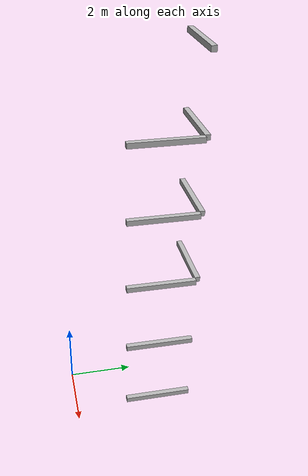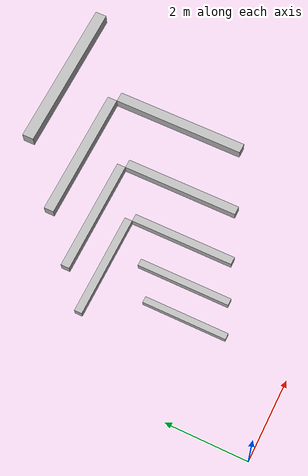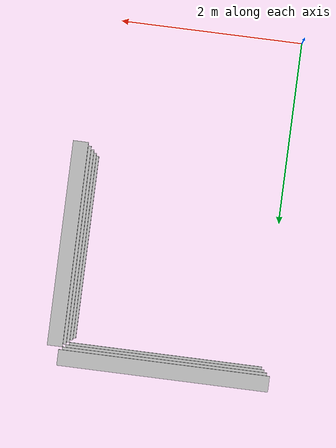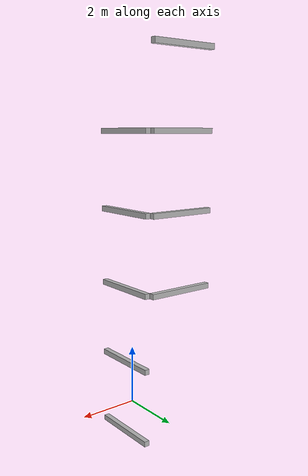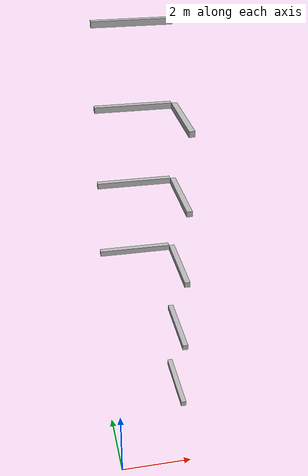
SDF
<sdf version="1.7">
 <world name="default">
  <model name="orthogonal_747_2.000.15_TS">
   <static>1</static>
   <link name="y_link_1_3_4">
    <inertial>
     <mass>1</mass>
     <inertia>
      <ixx>0.166667</ixx>
      <ixy>0</ixy>
      <ixz>0</ixz>
      <iyy>0.166667</iyy>
      <iyz>0</iyz>
      <izz>0.166667</izz>
     </inertia>
    </inertial>
    <pose>8.6 7.525 3.225 0 -0 0</pose>
    <visual name="visual_0">
     <laser_retro>1415</laser_retro>
     <geometry><box><size>0.15 1e-06 0.15</size></box></geometry>
     <material>
      <script><name>Gazebo/Grey</name><uri>file://media/materials/scripts/gazebo.material</uri></script>
      <shader type="pixel"><normal_map>__default__</normal_map></shader>
      <ambient>0.678 0.498 0.659 1</ambient>
      <diffuse>0.7 0.7 0.7 1</diffuse>
      <specular>0.01 0.01 0.01 1</specular>
      <emissive>0 0 0 1</emissive>
     </material>
     <pose>0 -1 0 0 -0 0</pose>
     <transparency>1</transparency>
    </visual>
    <visual name="visual_1">
     <laser_retro>1416</laser_retro>
     <geometry><box><size>0.15 1e-06 0.15</size></box></geometry>
     <material>
      <script><name>Gazebo/Grey</name><uri>file://media/materials/scripts/gazebo.material</uri></script>
      <shader type="pixel"><normal_map>__default__</normal_map></shader>
      <ambient>0.447 0.624 0.812 1</ambient>
      <diffuse>0.7 0.7 0.7 1</diffuse>
      <specular>0.01 0.01 0.01 1</specular>
      <emissive>0 0 0 1</emissive>
     </material>
     <pose>0 1 0 0 -0 0</pose>
     <transparency>1</transparency>
    </visual>
    <visual name="visual_2">
     <laser_retro>1417</laser_retro>
     <geometry><box><size>0.15 2 1e-06</size></box></geometry>
     <material>
      <script><name>Gazebo/Grey</name><uri>file://media/materials/scripts/gazebo.material</uri></script>
      <shader type="pixel"><normal_map>__default__</normal_map></shader>
      <ambient>0.988 0.686 0.243 1</ambient>
      <diffuse>0.7 0.7 0.7 1</diffuse>
      <specular>0.01 0.01 0.01 1</specular>
      <emissive>0 0 0 1</emissive>
     </material>
     <pose>0 0 -0.075 0 -0 0</pose>
     <transparency>1</transparency>
    </visual>
    <visual name="visual_3">
     <laser_retro>1418</laser_retro>
     <geometry><box><size>1e-06 2 0.15</size></box></geometry>
     <material>
      <script><name>Gazebo/Grey</name><uri>file://media/materials/scripts/gazebo.material</uri></script>
      <shader type="pixel"><normal_map>__default__</normal_map></shader>
      <ambient>0.988 0.914 0.31 1</ambient>
      <diffuse>0.7 0.7 0.7 1</diffuse>
      <specular>0.01 0.01 0.01 1</specular>
      <emissive>0 0 0 1</emissive>
     </material>
     <pose>0.075 0 0 0 -0 0</pose>
     <transparency>1</transparency>
    </visual>
    <visual name="visual_4">
     <laser_retro>1419</laser_retro>
     <geometry><box><size>0.15 2 1e-06</size></box></geometry>
     <material>
      <script><name>Gazebo/Grey</name><uri>file://media/materials/scripts/gazebo.material</uri></script>
      <shader type="pixel"><normal_map>__default__</normal_map></shader>
      <ambient>0.937 0.161 0.161 1</ambient>
      <diffuse>0.7 0.7 0.7 1</diffuse>
      <specular>0.01 0.01 0.01 1</specular>
      <emissive>0 0 0 1</emissive>
     </material>
     <pose>0 0 0.075 0 -0 0</pose>
     <transparency>1</transparency>
    </visual>
    <visual name="visual_5">
     <laser_retro>1420</laser_retro>
     <geometry><box><size>1e-06 2 0.15</size></box></geometry>
     <material>
      <script><name>Gazebo/Grey</name><uri>file://media/materials/scripts/gazebo.material</uri></script>
      <shader type="pixel"><normal_map>__default__</normal_map></shader>
      <ambient>0.541 0.886 0.204 1</ambient>
      <diffuse>0.7 0.7 0.7 1</diffuse>
      <specular>0.01 0.01 0.01 1</specular>
      <emissive>0 0 0 1</emissive>
     </material>
     <pose>-0.075 0 0 0 -0 0</pose>
     <transparency>1</transparency>
    </visual>
    <visual name="visual_texture">
     <geometry><box><size>0.149985 1.9998 0.149985</size></box></geometry>
     <material>
      <script>
       <uri>model://BASE_MODELS/simple_block_v2_textured/materials/scripts</uri>
       <uri>model://BASE_MODELS/simple_block_v2_textured/materials/textures</uri>
       <name>metal</name>
      </script>
     </material>
     <laser_retro>1421</laser_retro>
    </visual>
    <collision name="collision">
     <geometry><box><size>0.15 2 0.15</size></box></geometry>
     <surface>
      <friction>
       <ode><mu>1</mu><mu2>1</mu2><fdir1>0 0 0</fdir1><slip1>0</slip1><slip2>0</slip2></ode>
       <torsional>
        <coefficient>1</coefficient>
        <patch_radius>0</patch_radius>
        <surface_radius>0</surface_radius>
        <use_patch_radius>1</use_patch_radius>
        <ode><slip>0</slip></ode>
       </torsional>
      </friction>
      <bounce><restitution_coefficient>0</restitution_coefficient><threshold>1e+06</threshold></bounce>
      <contact>
       <collide_without_contact>0</collide_without_contact>
       <collide_without_contact_bitmask>1</collide_without_contact_bitmask>
       <collide_bitmask>1</collide_bitmask>
       <ode>
        <soft_cfm>0</soft_cfm>
        <soft_erp>0.2</soft_erp>
        <kp>1e+13</kp>
        <kd>1</kd>
        <max_vel>0.01</max_vel>
        <min_depth>0</min_depth>
       </ode>
       <bullet>
        <split_impulse>1</split_impulse>
        <split_impulse_penetration_threshold>-0.01</split_impulse_penetration_threshold>
        <soft_cfm>0</soft_cfm>
        <soft_erp>0.2</soft_erp>
        <kp>1e+13</kp>
        <kd>1</kd>
       </bullet>
      </contact>
     </surface>
    </collision>
   </link>
   <link name="y_link_2_3_4">
    <inertial>
     <mass>1</mass>
     <inertia>
      <ixx>0.166667</ixx>
      <ixy>0</ixy>
      <ixz>0</ixz>
      <iyy>0.166667</iyy>
      <iyz>0</iyz>
      <izz>0.166667</izz>
     </inertia>
    </inertial>
    <pose>8.6 7.525 5.375 0 -0 0</pose>
    <visual name="visual_0">
     <laser_retro>2318</laser_retro>
     <geometry><box><size>0.15 1e-06 0.15</size></box></geometry>
     <material>
      <script><name>Gazebo/Grey</name><uri>file://media/materials/scripts/gazebo.material</uri></script>
      <shader type="pixel"><normal_map>__default__</normal_map></shader>
      <ambient>0.678 0.498 0.659 1</ambient>
      <diffuse>0.7 0.7 0.7 1</diffuse>
      <specular>0.01 0.01 0.01 1</specular>
      <emissive>0 0 0 1</emissive>
     </material>
     <pose>0 -1 0 0 -0 0</pose>
     <transparency>1</transparency>
    </visual>
    <visual name="visual_1">
     <laser_retro>2319</laser_retro>
     <geometry><box><size>0.15 1e-06 0.15</size></box></geometry>
     <material>
      <script><name>Gazebo/Grey</name><uri>file://media/materials/scripts/gazebo.material</uri></script>
      <shader type="pixel"><normal_map>__default__</normal_map></shader>
      <ambient>0.447 0.624 0.812 1</ambient>
      <diffuse>0.7 0.7 0.7 1</diffuse>
      <specular>0.01 0.01 0.01 1</specular>
      <emissive>0 0 0 1</emissive>
     </material>
     <pose>0 1 0 0 -0 0</pose>
     <transparency>1</transparency>
    </visual>
    <visual name="visual_2">
     <laser_retro>2320</laser_retro>
     <geometry><box><size>0.15 2 1e-06</size></box></geometry>
     <material>
      <script><name>Gazebo/Grey</name><uri>file://media/materials/scripts/gazebo.material</uri></script>
      <shader type="pixel"><normal_map>__default__</normal_map></shader>
      <ambient>0.988 0.686 0.243 1</ambient>
      <diffuse>0.7 0.7 0.7 1</diffuse>
      <specular>0.01 0.01 0.01 1</specular>
      <emissive>0 0 0 1</emissive>
     </material>
     <pose>0 0 -0.075 0 -0 0</pose>
     <transparency>1</transparency>
    </visual>
    <visual name="visual_3">
     <laser_retro>2321</laser_retro>
     <geometry><box><size>1e-06 2 0.15</size></box></geometry>
     <material>
      <script><name>Gazebo/Grey</name><uri>file://media/materials/scripts/gazebo.material</uri></script>
      <shader type="pixel"><normal_map>__default__</normal_map></shader>
      <ambient>0.988 0.914 0.31 1</ambient>
      <diffuse>0.7 0.7 0.7 1</diffuse>
      <specular>0.01 0.01 0.01 1</specular>
      <emissive>0 0 0 1</emissive>
     </material>
     <pose>0.075 0 0 0 -0 0</pose>
     <transparency>1</transparency>
    </visual>
    <visual name="visual_4">
     <laser_retro>2322</laser_retro>
     <geometry><box><size>0.15 2 1e-06</size></box></geometry>
     <material>
      <script><name>Gazebo/Grey</name><uri>file://media/materials/scripts/gazebo.material</uri></script>
      <shader type="pixel"><normal_map>__default__</normal_map></shader>
      <ambient>0.937 0.161 0.161 1</ambient>
      <diffuse>0.7 0.7 0.7 1</diffuse>
      <specular>0.01 0.01 0.01 1</specular>
      <emissive>0 0 0 1</emissive>
     </material>
     <pose>0 0 0.075 0 -0 0</pose>
     <transparency>1</transparency>
    </visual>
    <visual name="visual_5">
     <laser_retro>2323</laser_retro>
     <geometry><box><size>1e-06 2 0.15</size></box></geometry>
     <material>
      <script><name>Gazebo/Grey</name><uri>file://media/materials/scripts/gazebo.material</uri></script>
      <shader type="pixel"><normal_map>__default__</normal_map></shader>
      <ambient>0.541 0.886 0.204 1</ambient>
      <diffuse>0.7 0.7 0.7 1</diffuse>
      <specular>0.01 0.01 0.01 1</specular>
      <emissive>0 0 0 1</emissive>
     </material>
     <pose>-0.075 0 0 0 -0 0</pose>
     <transparency>1</transparency>
    </visual>
    <visual name="visual_texture">
     <geometry><box><size>0.149985 1.9998 0.149985</size></box></geometry>
     <material>
      <script>
       <uri>model://BASE_MODELS/simple_block_v2_textured/materials/scripts</uri>
       <uri>model://BASE_MODELS/simple_block_v2_textured/materials/textures</uri>
       <name>metal</name>
      </script>
     </material>
     <laser_retro>2324</laser_retro>
    </visual>
    <collision name="collision">
     <geometry><box><size>0.15 2 0.15</size></box></geometry>
     <surface>
      <friction>
       <ode><mu>1</mu><mu2>1</mu2><fdir1>0 0 0</fdir1><slip1>0</slip1><slip2>0</slip2></ode>
       <torsional>
        <coefficient>1</coefficient>
        <patch_radius>0</patch_radius>
        <surface_radius>0</surface_radius>
        <use_patch_radius>1</use_patch_radius>
        <ode><slip>0</slip></ode>
       </torsional>
      </friction>
      <bounce><restitution_coefficient>0</restitution_coefficient><threshold>1e+06</threshold></bounce>
      <contact>
       <collide_without_contact>0</collide_without_contact>
       <collide_without_contact_bitmask>1</collide_without_contact_bitmask>
       <collide_bitmask>1</collide_bitmask>
       <ode>
        <soft_cfm>0</soft_cfm>
        <soft_erp>0.2</soft_erp>
        <kp>1e+13</kp>
        <kd>1</kd>
        <max_vel>0.01</max_vel>
        <min_depth>0</min_depth>
       </ode>
       <bullet>
        <split_impulse>1</split_impulse>
        <split_impulse_penetration_threshold>-0.01</split_impulse_penetration_threshold>
        <soft_cfm>0</soft_cfm>
        <soft_erp>0.2</soft_erp>
        <kp>1e+13</kp>
        <kd>1</kd>
       </bullet>
      </contact>
     </surface>
    </collision>
   </link>
   <link name="y_link_3_3_4">
    <inertial>
     <mass>1</mass>
     <inertia>
      <ixx>0.166667</ixx>
      <ixy>0</ixy>
      <ixz>0</ixz>
      <iyy>0.166667</iyy>
      <iyz>0</iyz>
      <izz>0.166667</izz>
     </inertia>
    </inertial>
    <pose>8.6 7.525 7.525 0 -0 0</pose>
    <visual name="visual_0">
     <laser_retro>3221</laser_retro>
     <geometry><box><size>0.15 1e-06 0.15</size></box></geometry>
     <material>
      <script><name>Gazebo/Grey</name><uri>file://media/materials/scripts/gazebo.material</uri></script>
      <shader type="pixel"><normal_map>__default__</normal_map></shader>
      <ambient>0.678 0.498 0.659 1</ambient>
      <diffuse>0.7 0.7 0.7 1</diffuse>
      <specular>0.01 0.01 0.01 1</specular>
      <emissive>0 0 0 1</emissive>
     </material>
     <pose>0 -1 0 0 -0 0</pose>
     <transparency>1</transparency>
    </visual>
    <visual name="visual_1">
     <laser_retro>3222</laser_retro>
     <geometry><box><size>0.15 1e-06 0.15</size></box></geometry>
     <material>
      <script><name>Gazebo/Grey</name><uri>file://media/materials/scripts/gazebo.material</uri></script>
      <shader type="pixel"><normal_map>__default__</normal_map></shader>
      <ambient>0.447 0.624 0.812 1</ambient>
      <diffuse>0.7 0.7 0.7 1</diffuse>
      <specular>0.01 0.01 0.01 1</specular>
      <emissive>0 0 0 1</emissive>
     </material>
     <pose>0 1 0 0 -0 0</pose>
     <transparency>1</transparency>
    </visual>
    <visual name="visual_2">
     <laser_retro>3223</laser_retro>
     <geometry><box><size>0.15 2 1e-06</size></box></geometry>
     <material>
      <script><name>Gazebo/Grey</name><uri>file://media/materials/scripts/gazebo.material</uri></script>
      <shader type="pixel"><normal_map>__default__</normal_map></shader>
      <ambient>0.988 0.686 0.243 1</ambient>
      <diffuse>0.7 0.7 0.7 1</diffuse>
      <specular>0.01 0.01 0.01 1</specular>
      <emissive>0 0 0 1</emissive>
     </material>
     <pose>0 0 -0.075 0 -0 0</pose>
     <transparency>1</transparency>
    </visual>
    <visual name="visual_3">
     <laser_retro>3224</laser_retro>
     <geometry><box><size>1e-06 2 0.15</size></box></geometry>
     <material>
      <script><name>Gazebo/Grey</name><uri>file://media/materials/scripts/gazebo.material</uri></script>
      <shader type="pixel"><normal_map>__default__</normal_map></shader>
      <ambient>0.988 0.914 0.31 1</ambient>
      <diffuse>0.7 0.7 0.7 1</diffuse>
      <specular>0.01 0.01 0.01 1</specular>
      <emissive>0 0 0 1</emissive>
     </material>
     <pose>0.075 0 0 0 -0 0</pose>
     <transparency>1</transparency>
    </visual>
    <visual name="visual_4">
     <laser_retro>3225</laser_retro>
     <geometry><box><size>0.15 2 1e-06</size></box></geometry>
     <material>
      <script><name>Gazebo/Grey</name><uri>file://media/materials/scripts/gazebo.material</uri></script>
      <shader type="pixel"><normal_map>__default__</normal_map></shader>
      <ambient>0.937 0.161 0.161 1</ambient>
      <diffuse>0.7 0.7 0.7 1</diffuse>
      <specular>0.01 0.01 0.01 1</specular>
      <emissive>0 0 0 1</emissive>
     </material>
     <pose>0 0 0.075 0 -0 0</pose>
     <transparency>1</transparency>
    </visual>
    <visual name="visual_5">
     <laser_retro>3226</laser_retro>
     <geometry><box><size>1e-06 2 0.15</size></box></geometry>
     <material>
      <script><name>Gazebo/Grey</name><uri>file://media/materials/scripts/gazebo.material</uri></script>
      <shader type="pixel"><normal_map>__default__</normal_map></shader>
      <ambient>0.541 0.886 0.204 1</ambient>
      <diffuse>0.7 0.7 0.7 1</diffuse>
      <specular>0.01 0.01 0.01 1</specular>
      <emissive>0 0 0 1</emissive>
     </material>
     <pose>-0.075 0 0 0 -0 0</pose>
     <transparency>1</transparency>
    </visual>
    <visual name="visual_texture">
     <geometry><box><size>0.149985 1.9998 0.149985</size></box></geometry>
     <material>
      <script>
       <uri>model://BASE_MODELS/simple_block_v2_textured/materials/scripts</uri>
       <uri>model://BASE_MODELS/simple_block_v2_textured/materials/textures</uri>
       <name>metal</name>
      </script>
     </material>
     <laser_retro>3227</laser_retro>
    </visual>
    <collision name="collision">
     <geometry><box><size>0.15 2 0.15</size></box></geometry>
     <surface>
      <friction>
       <ode><mu>1</mu><mu2>1</mu2><fdir1>0 0 0</fdir1><slip1>0</slip1><slip2>0</slip2></ode>
       <torsional>
        <coefficient>1</coefficient>
        <patch_radius>0</patch_radius>
        <surface_radius>0</surface_radius>
        <use_patch_radius>1</use_patch_radius>
        <ode><slip>0</slip></ode>
       </torsional>
      </friction>
      <bounce><restitution_coefficient>0</restitution_coefficient><threshold>1e+06</threshold></bounce>
      <contact>
       <collide_without_contact>0</collide_without_contact>
       <collide_without_contact_bitmask>1</collide_without_contact_bitmask>
       <collide_bitmask>1</collide_bitmask>
       <ode>
        <soft_cfm>0</soft_cfm>
        <soft_erp>0.2</soft_erp>
        <kp>1e+13</kp>
        <kd>1</kd>
        <max_vel>0.01</max_vel>
        <min_depth>0</min_depth>
       </ode>
       <bullet>
        <split_impulse>1</split_impulse>
        <split_impulse_penetration_threshold>-0.01</split_impulse_penetration_threshold>
        <soft_cfm>0</soft_cfm>
        <soft_erp>0.2</soft_erp>
        <kp>1e+13</kp>
        <kd>1</kd>
       </bullet>
      </contact>
     </surface>
    </collision>
   </link>
   <link name="x_link_3_4_3">
    <inertial>
     <mass>1</mass>
     <inertia>
      <ixx>0.166667</ixx>
      <ixy>0</ixy>
      <ixz>0</ixz>
      <iyy>0.166667</iyy>
      <iyz>0</iyz>
      <izz>0.166667</izz>
     </inertia>
    </inertial>
    <pose>7.525 8.6 7.525 0 -0 0</pose>
    <visual name="visual_0">
     <laser_retro>3361</laser_retro>
     <geometry><box><size>2 1e-06 0.15</size></box></geometry>
     <material>
      <script><name>Gazebo/Grey</name><uri>file://media/materials/scripts/gazebo.material</uri></script>
      <shader type="pixel"><normal_map>__default__</normal_map></shader>
      <ambient>0.678 0.498 0.659 1</ambient>
      <diffuse>0.7 0.7 0.7 1</diffuse>
      <specular>0.01 0.01 0.01 1</specular>
      <emissive>0 0 0 1</emissive>
     </material>
     <pose>0 -0.075 0 0 -0 0</pose>
     <transparency>1</transparency>
    </visual>
    <visual name="visual_1">
     <laser_retro>3362</laser_retro>
     <geometry><box><size>2 1e-06 0.15</size></box></geometry>
     <material>
      <script><name>Gazebo/Grey</name><uri>file://media/materials/scripts/gazebo.material</uri></script>
      <shader type="pixel"><normal_map>__default__</normal_map></shader>
      <ambient>0.447 0.624 0.812 1</ambient>
      <diffuse>0.7 0.7 0.7 1</diffuse>
      <specular>0.01 0.01 0.01 1</specular>
      <emissive>0 0 0 1</emissive>
     </material>
     <pose>0 0.075 0 0 -0 0</pose>
     <transparency>1</transparency>
    </visual>
    <visual name="visual_2">
     <laser_retro>3363</laser_retro>
     <geometry><box><size>2 0.15 1e-06</size></box></geometry>
     <material>
      <script><name>Gazebo/Grey</name><uri>file://media/materials/scripts/gazebo.material</uri></script>
      <shader type="pixel"><normal_map>__default__</normal_map></shader>
      <ambient>0.988 0.686 0.243 1</ambient>
      <diffuse>0.7 0.7 0.7 1</diffuse>
      <specular>0.01 0.01 0.01 1</specular>
      <emissive>0 0 0 1</emissive>
     </material>
     <pose>0 0 -0.075 0 -0 0</pose>
     <transparency>1</transparency>
    </visual>
    <visual name="visual_3">
     <laser_retro>3364</laser_retro>
     <geometry><box><size>1e-06 0.15 0.15</size></box></geometry>
     <material>
      <script><name>Gazebo/Grey</name><uri>file://media/materials/scripts/gazebo.material</uri></script>
      <shader type="pixel"><normal_map>__default__</normal_map></shader>
      <ambient>0.988 0.914 0.31 1</ambient>
      <diffuse>0.7 0.7 0.7 1</diffuse>
      <specular>0.01 0.01 0.01 1</specular>
      <emissive>0 0 0 1</emissive>
     </material>
     <pose>1 0 0 0 -0 0</pose>
     <transparency>1</transparency>
    </visual>
    <visual name="visual_4">
     <laser_retro>3365</laser_retro>
     <geometry><box><size>2 0.15 1e-06</size></box></geometry>
     <material>
      <script><name>Gazebo/Grey</name><uri>file://media/materials/scripts/gazebo.material</uri></script>
      <shader type="pixel"><normal_map>__default__</normal_map></shader>
      <ambient>0.937 0.161 0.161 1</ambient>
      <diffuse>0.7 0.7 0.7 1</diffuse>
      <specular>0.01 0.01 0.01 1</specular>
      <emissive>0 0 0 1</emissive>
     </material>
     <pose>0 0 0.075 0 -0 0</pose>
     <transparency>1</transparency>
    </visual>
    <visual name="visual_5">
     <laser_retro>3366</laser_retro>
     <geometry><box><size>1e-06 0.15 0.15</size></box></geometry>
     <material>
      <script><name>Gazebo/Grey</name><uri>file://media/materials/scripts/gazebo.material</uri></script>
      <shader type="pixel"><normal_map>__default__</normal_map></shader>
      <ambient>0.541 0.886 0.204 1</ambient>
      <diffuse>0.7 0.7 0.7 1</diffuse>
      <specular>0.01 0.01 0.01 1</specular>
      <emissive>0 0 0 1</emissive>
     </material>
     <pose>-1 0 0 0 -0 0</pose>
     <transparency>1</transparency>
    </visual>
    <visual name="visual_texture">
     <geometry><box><size>1.9998 0.149985 0.149985</size></box></geometry>
     <material>
      <script>
       <uri>model://BASE_MODELS/simple_block_v2_textured/materials/scripts</uri>
       <uri>model://BASE_MODELS/simple_block_v2_textured/materials/textures</uri>
       <name>metal</name>
      </script>
     </material>
     <laser_retro>3367</laser_retro>
    </visual>
    <collision name="collision">
     <geometry><box><size>2 0.15 0.15</size></box></geometry>
     <surface>
      <friction>
       <ode><mu>1</mu><mu2>1</mu2><fdir1>0 0 0</fdir1><slip1>0</slip1><slip2>0</slip2></ode>
       <torsional>
        <coefficient>1</coefficient>
        <patch_radius>0</patch_radius>
        <surface_radius>0</surface_radius>
        <use_patch_radius>1</use_patch_radius>
        <ode><slip>0</slip></ode>
       </torsional>
      </friction>
      <bounce><restitution_coefficient>0</restitution_coefficient><threshold>1e+06</threshold></bounce>
      <contact>
       <collide_without_contact>0</collide_without_contact>
       <collide_without_contact_bitmask>1</collide_without_contact_bitmask>
       <collide_bitmask>1</collide_bitmask>
       <ode>
        <soft_cfm>0</soft_cfm>
        <soft_erp>0.2</soft_erp>
        <kp>1e+13</kp>
        <kd>1</kd>
        <max_vel>0.01</max_vel>
        <min_depth>0</min_depth>
       </ode>
       <bullet>
        <split_impulse>1</split_impulse>
        <split_impulse_penetration_threshold>-0.01</split_impulse_penetration_threshold>
        <soft_cfm>0</soft_cfm>
        <soft_erp>0.2</soft_erp>
        <kp>1e+13</kp>
        <kd>1</kd>
       </bullet>
      </contact>
     </surface>
    </collision>
   </link>
   <link name="y_link_4_3_4">
    <inertial>
     <mass>1</mass>
     <inertia>
      <ixx>0.166667</ixx>
      <ixy>0</ixy>
      <ixz>0</ixz>
      <iyy>0.166667</iyy>
      <iyz>0</iyz>
      <izz>0.166667</izz>
     </inertia>
    </inertial>
    <pose>8.6 7.525 9.675 0 -0 0</pose>
    <visual name="visual_0">
     <laser_retro>4124</laser_retro>
     <geometry><box><size>0.15 1e-06 0.15</size></box></geometry>
     <material>
      <script><name>Gazebo/Grey</name><uri>file://media/materials/scripts/gazebo.material</uri></script>
      <shader type="pixel"><normal_map>__default__</normal_map></shader>
      <ambient>0.678 0.498 0.659 1</ambient>
      <diffuse>0.7 0.7 0.7 1</diffuse>
      <specular>0.01 0.01 0.01 1</specular>
      <emissive>0 0 0 1</emissive>
     </material>
     <pose>0 -1 0 0 -0 0</pose>
     <transparency>1</transparency>
    </visual>
    <visual name="visual_1">
     <laser_retro>4125</laser_retro>
     <geometry><box><size>0.15 1e-06 0.15</size></box></geometry>
     <material>
      <script><name>Gazebo/Grey</name><uri>file://media/materials/scripts/gazebo.material</uri></script>
      <shader type="pixel"><normal_map>__default__</normal_map></shader>
      <ambient>0.447 0.624 0.812 1</ambient>
      <diffuse>0.7 0.7 0.7 1</diffuse>
      <specular>0.01 0.01 0.01 1</specular>
      <emissive>0 0 0 1</emissive>
     </material>
     <pose>0 1 0 0 -0 0</pose>
     <transparency>1</transparency>
    </visual>
    <visual name="visual_2">
     <laser_retro>4126</laser_retro>
     <geometry><box><size>0.15 2 1e-06</size></box></geometry>
     <material>
      <script><name>Gazebo/Grey</name><uri>file://media/materials/scripts/gazebo.material</uri></script>
      <shader type="pixel"><normal_map>__default__</normal_map></shader>
      <ambient>0.988 0.686 0.243 1</ambient>
      <diffuse>0.7 0.7 0.7 1</diffuse>
      <specular>0.01 0.01 0.01 1</specular>
      <emissive>0 0 0 1</emissive>
     </material>
     <pose>0 0 -0.075 0 -0 0</pose>
     <transparency>1</transparency>
    </visual>
    <visual name="visual_3">
     <laser_retro>4127</laser_retro>
     <geometry><box><size>1e-06 2 0.15</size></box></geometry>
     <material>
      <script><name>Gazebo/Grey</name><uri>file://media/materials/scripts/gazebo.material</uri></script>
      <shader type="pixel"><normal_map>__default__</normal_map></shader>
      <ambient>0.988 0.914 0.31 1</ambient>
      <diffuse>0.7 0.7 0.7 1</diffuse>
      <specular>0.01 0.01 0.01 1</specular>
      <emissive>0 0 0 1</emissive>
     </material>
     <pose>0.075 0 0 0 -0 0</pose>
     <transparency>1</transparency>
    </visual>
    <visual name="visual_4">
     <laser_retro>4128</laser_retro>
     <geometry><box><size>0.15 2 1e-06</size></box></geometry>
     <material>
      <script><name>Gazebo/Grey</name><uri>file://media/materials/scripts/gazebo.material</uri></script>
      <shader type="pixel"><normal_map>__default__</normal_map></shader>
      <ambient>0.937 0.161 0.161 1</ambient>
      <diffuse>0.7 0.7 0.7 1</diffuse>
      <specular>0.01 0.01 0.01 1</specular>
      <emissive>0 0 0 1</emissive>
     </material>
     <pose>0 0 0.075 0 -0 0</pose>
     <transparency>1</transparency>
    </visual>
    <visual name="visual_5">
     <laser_retro>4129</laser_retro>
     <geometry><box><size>1e-06 2 0.15</size></box></geometry>
     <material>
      <script><name>Gazebo/Grey</name><uri>file://media/materials/scripts/gazebo.material</uri></script>
      <shader type="pixel"><normal_map>__default__</normal_map></shader>
      <ambient>0.541 0.886 0.204 1</ambient>
      <diffuse>0.7 0.7 0.7 1</diffuse>
      <specular>0.01 0.01 0.01 1</specular>
      <emissive>0 0 0 1</emissive>
     </material>
     <pose>-0.075 0 0 0 -0 0</pose>
     <transparency>1</transparency>
    </visual>
    <visual name="visual_texture">
     <geometry><box><size>0.149985 1.9998 0.149985</size></box></geometry>
     <material>
      <script>
       <uri>model://BASE_MODELS/simple_block_v2_textured/materials/scripts</uri>
       <uri>model://BASE_MODELS/simple_block_v2_textured/materials/textures</uri>
       <name>metal</name>
      </script>
     </material>
     <laser_retro>4130</laser_retro>
    </visual>
    <collision name="collision">
     <geometry><box><size>0.15 2 0.15</size></box></geometry>
     <surface>
      <friction>
       <ode><mu>1</mu><mu2>1</mu2><fdir1>0 0 0</fdir1><slip1>0</slip1><slip2>0</slip2></ode>
       <torsional>
        <coefficient>1</coefficient>
        <patch_radius>0</patch_radius>
        <surface_radius>0</surface_radius>
        <use_patch_radius>1</use_patch_radius>
        <ode><slip>0</slip></ode>
       </torsional>
      </friction>
      <bounce><restitution_coefficient>0</restitution_coefficient><threshold>1e+06</threshold></bounce>
      <contact>
       <collide_without_contact>0</collide_without_contact>
       <collide_without_contact_bitmask>1</collide_without_contact_bitmask>
       <collide_bitmask>1</collide_bitmask>
       <ode>
        <soft_cfm>0</soft_cfm>
        <soft_erp>0.2</soft_erp>
        <kp>1e+13</kp>
        <kd>1</kd>
        <max_vel>0.01</max_vel>
        <min_depth>0</min_depth>
       </ode>
       <bullet>
        <split_impulse>1</split_impulse>
        <split_impulse_penetration_threshold>-0.01</split_impulse_penetration_threshold>
        <soft_cfm>0</soft_cfm>
        <soft_erp>0.2</soft_erp>
        <kp>1e+13</kp>
        <kd>1</kd>
       </bullet>
      </contact>
     </surface>
    </collision>
   </link>
   <link name="x_link_4_4_3">
    <inertial>
     <mass>1</mass>
     <inertia>
      <ixx>0.166667</ixx>
      <ixy>0</ixy>
      <ixz>0</ixz>
      <iyy>0.166667</iyy>
      <iyz>0</iyz>
      <izz>0.166667</izz>
     </inertia>
    </inertial>
    <pose>7.525 8.6 9.675 0 -0 0</pose>
    <visual name="visual_0">
     <laser_retro>4264</laser_retro>
     <geometry><box><size>2 1e-06 0.15</size></box></geometry>
     <material>
      <script><name>Gazebo/Grey</name><uri>file://media/materials/scripts/gazebo.material</uri></script>
      <shader type="pixel"><normal_map>__default__</normal_map></shader>
      <ambient>0.678 0.498 0.659 1</ambient>
      <diffuse>0.7 0.7 0.7 1</diffuse>
      <specular>0.01 0.01 0.01 1</specular>
      <emissive>0 0 0 1</emissive>
     </material>
     <pose>0 -0.075 0 0 -0 0</pose>
     <transparency>1</transparency>
    </visual>
    <visual name="visual_1">
     <laser_retro>4265</laser_retro>
     <geometry><box><size>2 1e-06 0.15</size></box></geometry>
     <material>
      <script><name>Gazebo/Grey</name><uri>file://media/materials/scripts/gazebo.material</uri></script>
      <shader type="pixel"><normal_map>__default__</normal_map></shader>
      <ambient>0.447 0.624 0.812 1</ambient>
      <diffuse>0.7 0.7 0.7 1</diffuse>
      <specular>0.01 0.01 0.01 1</specular>
      <emissive>0 0 0 1</emissive>
     </material>
     <pose>0 0.075 0 0 -0 0</pose>
     <transparency>1</transparency>
    </visual>
    <visual name="visual_2">
     <laser_retro>4266</laser_retro>
     <geometry><box><size>2 0.15 1e-06</size></box></geometry>
     <material>
      <script><name>Gazebo/Grey</name><uri>file://media/materials/scripts/gazebo.material</uri></script>
      <shader type="pixel"><normal_map>__default__</normal_map></shader>
      <ambient>0.988 0.686 0.243 1</ambient>
      <diffuse>0.7 0.7 0.7 1</diffuse>
      <specular>0.01 0.01 0.01 1</specular>
      <emissive>0 0 0 1</emissive>
     </material>
     <pose>0 0 -0.075 0 -0 0</pose>
     <transparency>1</transparency>
    </visual>
    <visual name="visual_3">
     <laser_retro>4267</laser_retro>
     <geometry><box><size>1e-06 0.15 0.15</size></box></geometry>
     <material>
      <script><name>Gazebo/Grey</name><uri>file://media/materials/scripts/gazebo.material</uri></script>
      <shader type="pixel"><normal_map>__default__</normal_map></shader>
      <ambient>0.988 0.914 0.31 1</ambient>
      <diffuse>0.7 0.7 0.7 1</diffuse>
      <specular>0.01 0.01 0.01 1</specular>
      <emissive>0 0 0 1</emissive>
     </material>
     <pose>1 0 0 0 -0 0</pose>
     <transparency>1</transparency>
    </visual>
    <visual name="visual_4">
     <laser_retro>4268</laser_retro>
     <geometry><box><size>2 0.15 1e-06</size></box></geometry>
     <material>
      <script><name>Gazebo/Grey</name><uri>file://media/materials/scripts/gazebo.material</uri></script>
      <shader type="pixel"><normal_map>__default__</normal_map></shader>
      <ambient>0.937 0.161 0.161 1</ambient>
      <diffuse>0.7 0.7 0.7 1</diffuse>
      <specular>0.01 0.01 0.01 1</specular>
      <emissive>0 0 0 1</emissive>
     </material>
     <pose>0 0 0.075 0 -0 0</pose>
     <transparency>1</transparency>
    </visual>
    <visual name="visual_5">
     <laser_retro>4269</laser_retro>
     <geometry><box><size>1e-06 0.15 0.15</size></box></geometry>
     <material>
      <script><name>Gazebo/Grey</name><uri>file://media/materials/scripts/gazebo.material</uri></script>
      <shader type="pixel"><normal_map>__default__</normal_map></shader>
      <ambient>0.541 0.886 0.204 1</ambient>
      <diffuse>0.7 0.7 0.7 1</diffuse>
      <specular>0.01 0.01 0.01 1</specular>
      <emissive>0 0 0 1</emissive>
     </material>
     <pose>-1 0 0 0 -0 0</pose>
     <transparency>1</transparency>
    </visual>
    <visual name="visual_texture">
     <geometry><box><size>1.9998 0.149985 0.149985</size></box></geometry>
     <material>
      <script>
       <uri>model://BASE_MODELS/simple_block_v2_textured/materials/scripts</uri>
       <uri>model://BASE_MODELS/simple_block_v2_textured/materials/textures</uri>
       <name>metal</name>
      </script>
     </material>
     <laser_retro>4270</laser_retro>
    </visual>
    <collision name="collision">
     <geometry><box><size>2 0.15 0.15</size></box></geometry>
     <surface>
      <friction>
       <ode><mu>1</mu><mu2>1</mu2><fdir1>0 0 0</fdir1><slip1>0</slip1><slip2>0</slip2></ode>
       <torsional>
        <coefficient>1</coefficient>
        <patch_radius>0</patch_radius>
        <surface_radius>0</surface_radius>
        <use_patch_radius>1</use_patch_radius>
        <ode><slip>0</slip></ode>
       </torsional>
      </friction>
      <bounce><restitution_coefficient>0</restitution_coefficient><threshold>1e+06</threshold></bounce>
      <contact>
       <collide_without_contact>0</collide_without_contact>
       <collide_without_contact_bitmask>1</collide_without_contact_bitmask>
       <collide_bitmask>1</collide_bitmask>
       <ode>
        <soft_cfm>0</soft_cfm>
        <soft_erp>0.2</soft_erp>
        <kp>1e+13</kp>
        <kd>1</kd>
        <max_vel>0.01</max_vel>
        <min_depth>0</min_depth>
       </ode>
       <bullet>
        <split_impulse>1</split_impulse>
        <split_impulse_penetration_threshold>-0.01</split_impulse_penetration_threshold>
        <soft_cfm>0</soft_cfm>
        <soft_erp>0.2</soft_erp>
        <kp>1e+13</kp>
        <kd>1</kd>
       </bullet>
      </contact>
     </surface>
    </collision>
   </link>
   <link name="y_link_5_3_4">
    <inertial>
     <mass>1</mass>
     <inertia>
      <ixx>0.166667</ixx>
      <ixy>0</ixy>
      <ixz>0</ixz>
      <iyy>0.166667</iyy>
      <iyz>0</iyz>
      <izz>0.166667</izz>
     </inertia>
    </inertial>
    <pose>8.6 7.525 11.825 0 -0 0</pose>
    <visual name="visual_0">
     <laser_retro>5027</laser_retro>
     <geometry><box><size>0.15 1e-06 0.15</size></box></geometry>
     <material>
      <script><name>Gazebo/Grey</name><uri>file://media/materials/scripts/gazebo.material</uri></script>
      <shader type="pixel"><normal_map>__default__</normal_map></shader>
      <ambient>0.678 0.498 0.659 1</ambient>
      <diffuse>0.7 0.7 0.7 1</diffuse>
      <specular>0.01 0.01 0.01 1</specular>
      <emissive>0 0 0 1</emissive>
     </material>
     <pose>0 -1 0 0 -0 0</pose>
     <transparency>1</transparency>
    </visual>
    <visual name="visual_1">
     <laser_retro>5028</laser_retro>
     <geometry><box><size>0.15 1e-06 0.15</size></box></geometry>
     <material>
      <script><name>Gazebo/Grey</name><uri>file://media/materials/scripts/gazebo.material</uri></script>
      <shader type="pixel"><normal_map>__default__</normal_map></shader>
      <ambient>0.447 0.624 0.812 1</ambient>
      <diffuse>0.7 0.7 0.7 1</diffuse>
      <specular>0.01 0.01 0.01 1</specular>
      <emissive>0 0 0 1</emissive>
     </material>
     <pose>0 1 0 0 -0 0</pose>
     <transparency>1</transparency>
    </visual>
    <visual name="visual_2">
     <laser_retro>5029</laser_retro>
     <geometry><box><size>0.15 2 1e-06</size></box></geometry>
     <material>
      <script><name>Gazebo/Grey</name><uri>file://media/materials/scripts/gazebo.material</uri></script>
      <shader type="pixel"><normal_map>__default__</normal_map></shader>
      <ambient>0.988 0.686 0.243 1</ambient>
      <diffuse>0.7 0.7 0.7 1</diffuse>
      <specular>0.01 0.01 0.01 1</specular>
      <emissive>0 0 0 1</emissive>
     </material>
     <pose>0 0 -0.075 0 -0 0</pose>
     <transparency>1</transparency>
    </visual>
    <visual name="visual_3">
     <laser_retro>5030</laser_retro>
     <geometry><box><size>1e-06 2 0.15</size></box></geometry>
     <material>
      <script><name>Gazebo/Grey</name><uri>file://media/materials/scripts/gazebo.material</uri></script>
      <shader type="pixel"><normal_map>__default__</normal_map></shader>
      <ambient>0.988 0.914 0.31 1</ambient>
      <diffuse>0.7 0.7 0.7 1</diffuse>
      <specular>0.01 0.01 0.01 1</specular>
      <emissive>0 0 0 1</emissive>
     </material>
     <pose>0.075 0 0 0 -0 0</pose>
     <transparency>1</transparency>
    </visual>
    <visual name="visual_4">
     <laser_retro>5031</laser_retro>
     <geometry><box><size>0.15 2 1e-06</size></box></geometry>
     <material>
      <script><name>Gazebo/Grey</name><uri>file://media/materials/scripts/gazebo.material</uri></script>
      <shader type="pixel"><normal_map>__default__</normal_map></shader>
      <ambient>0.937 0.161 0.161 1</ambient>
      <diffuse>0.7 0.7 0.7 1</diffuse>
      <specular>0.01 0.01 0.01 1</specular>
      <emissive>0 0 0 1</emissive>
     </material>
     <pose>0 0 0.075 0 -0 0</pose>
     <transparency>1</transparency>
    </visual>
    <visual name="visual_5">
     <laser_retro>5032</laser_retro>
     <geometry><box><size>1e-06 2 0.15</size></box></geometry>
     <material>
      <script><name>Gazebo/Grey</name><uri>file://media/materials/scripts/gazebo.material</uri></script>
      <shader type="pixel"><normal_map>__default__</normal_map></shader>
      <ambient>0.541 0.886 0.204 1</ambient>
      <diffuse>0.7 0.7 0.7 1</diffuse>
      <specular>0.01 0.01 0.01 1</specular>
      <emissive>0 0 0 1</emissive>
     </material>
     <pose>-0.075 0 0 0 -0 0</pose>
     <transparency>1</transparency>
    </visual>
    <visual name="visual_texture">
     <geometry><box><size>0.149985 1.9998 0.149985</size></box></geometry>
     <material>
      <script>
       <uri>model://BASE_MODELS/simple_block_v2_textured/materials/scripts</uri>
       <uri>model://BASE_MODELS/simple_block_v2_textured/materials/textures</uri>
       <name>metal</name>
      </script>
     </material>
     <laser_retro>5033</laser_retro>
    </visual>
    <collision name="collision">
     <geometry><box><size>0.15 2 0.15</size></box></geometry>
     <surface>
      <friction>
       <ode><mu>1</mu><mu2>1</mu2><fdir1>0 0 0</fdir1><slip1>0</slip1><slip2>0</slip2></ode>
       <torsional>
        <coefficient>1</coefficient>
        <patch_radius>0</patch_radius>
        <surface_radius>0</surface_radius>
        <use_patch_radius>1</use_patch_radius>
        <ode><slip>0</slip></ode>
       </torsional>
      </friction>
      <bounce><restitution_coefficient>0</restitution_coefficient><threshold>1e+06</threshold></bounce>
      <contact>
       <collide_without_contact>0</collide_without_contact>
       <collide_without_contact_bitmask>1</collide_without_contact_bitmask>
       <collide_bitmask>1</collide_bitmask>
       <ode>
        <soft_cfm>0</soft_cfm>
        <soft_erp>0.2</soft_erp>
        <kp>1e+13</kp>
        <kd>1</kd>
        <max_vel>0.01</max_vel>
        <min_depth>0</min_depth>
       </ode>
       <bullet>
        <split_impulse>1</split_impulse>
        <split_impulse_penetration_threshold>-0.01</split_impulse_penetration_threshold>
        <soft_cfm>0</soft_cfm>
        <soft_erp>0.2</soft_erp>
        <kp>1e+13</kp>
        <kd>1</kd>
       </bullet>
      </contact>
     </surface>
    </collision>
   </link>
   <link name="x_link_5_4_3">
    <inertial>
     <mass>1</mass>
     <inertia>
      <ixx>0.166667</ixx>
      <ixy>0</ixy>
      <ixz>0</ixz>
      <iyy>0.166667</iyy>
      <iyz>0</iyz>
      <izz>0.166667</izz>
     </inertia>
    </inertial>
    <pose>7.525 8.6 11.825 0 -0 0</pose>
    <visual name="visual_0">
     <laser_retro>5167</laser_retro>
     <geometry><box><size>2 1e-06 0.15</size></box></geometry>
     <material>
      <script><name>Gazebo/Grey</name><uri>file://media/materials/scripts/gazebo.material</uri></script>
      <shader type="pixel"><normal_map>__default__</normal_map></shader>
      <ambient>0.678 0.498 0.659 1</ambient>
      <diffuse>0.7 0.7 0.7 1</diffuse>
      <specular>0.01 0.01 0.01 1</specular>
      <emissive>0 0 0 1</emissive>
     </material>
     <pose>0 -0.075 0 0 -0 0</pose>
     <transparency>1</transparency>
    </visual>
    <visual name="visual_1">
     <laser_retro>5168</laser_retro>
     <geometry><box><size>2 1e-06 0.15</size></box></geometry>
     <material>
      <script><name>Gazebo/Grey</name><uri>file://media/materials/scripts/gazebo.material</uri></script>
      <shader type="pixel"><normal_map>__default__</normal_map></shader>
      <ambient>0.447 0.624 0.812 1</ambient>
      <diffuse>0.7 0.7 0.7 1</diffuse>
      <specular>0.01 0.01 0.01 1</specular>
      <emissive>0 0 0 1</emissive>
     </material>
     <pose>0 0.075 0 0 -0 0</pose>
     <transparency>1</transparency>
    </visual>
    <visual name="visual_2">
     <laser_retro>5169</laser_retro>
     <geometry><box><size>2 0.15 1e-06</size></box></geometry>
     <material>
      <script><name>Gazebo/Grey</name><uri>file://media/materials/scripts/gazebo.material</uri></script>
      <shader type="pixel"><normal_map>__default__</normal_map></shader>
      <ambient>0.988 0.686 0.243 1</ambient>
      <diffuse>0.7 0.7 0.7 1</diffuse>
      <specular>0.01 0.01 0.01 1</specular>
      <emissive>0 0 0 1</emissive>
     </material>
     <pose>0 0 -0.075 0 -0 0</pose>
     <transparency>1</transparency>
    </visual>
    <visual name="visual_3">
     <laser_retro>5170</laser_retro>
     <geometry><box><size>1e-06 0.15 0.15</size></box></geometry>
     <material>
      <script><name>Gazebo/Grey</name><uri>file://media/materials/scripts/gazebo.material</uri></script>
      <shader type="pixel"><normal_map>__default__</normal_map></shader>
      <ambient>0.988 0.914 0.31 1</ambient>
      <diffuse>0.7 0.7 0.7 1</diffuse>
      <specular>0.01 0.01 0.01 1</specular>
      <emissive>0 0 0 1</emissive>
     </material>
     <pose>1 0 0 0 -0 0</pose>
     <transparency>1</transparency>
    </visual>
    <visual name="visual_4">
     <laser_retro>5171</laser_retro>
     <geometry><box><size>2 0.15 1e-06</size></box></geometry>
     <material>
      <script><name>Gazebo/Grey</name><uri>file://media/materials/scripts/gazebo.material</uri></script>
      <shader type="pixel"><normal_map>__default__</normal_map></shader>
      <ambient>0.937 0.161 0.161 1</ambient>
      <diffuse>0.7 0.7 0.7 1</diffuse>
      <specular>0.01 0.01 0.01 1</specular>
      <emissive>0 0 0 1</emissive>
     </material>
     <pose>0 0 0.075 0 -0 0</pose>
     <transparency>1</transparency>
    </visual>
    <visual name="visual_5">
     <laser_retro>5172</laser_retro>
     <geometry><box><size>1e-06 0.15 0.15</size></box></geometry>
     <material>
      <script><name>Gazebo/Grey</name><uri>file://media/materials/scripts/gazebo.material</uri></script>
      <shader type="pixel"><normal_map>__default__</normal_map></shader>
      <ambient>0.541 0.886 0.204 1</ambient>
      <diffuse>0.7 0.7 0.7 1</diffuse>
      <specular>0.01 0.01 0.01 1</specular>
      <emissive>0 0 0 1</emissive>
     </material>
     <pose>-1 0 0 0 -0 0</pose>
     <transparency>1</transparency>
    </visual>
    <visual name="visual_texture">
     <geometry><box><size>1.9998 0.149985 0.149985</size></box></geometry>
     <material>
      <script>
       <uri>model://BASE_MODELS/simple_block_v2_textured/materials/scripts</uri>
       <uri>model://BASE_MODELS/simple_block_v2_textured/materials/textures</uri>
       <name>metal</name>
      </script>
     </material>
     <laser_retro>5173</laser_retro>
    </visual>
    <collision name="collision">
     <geometry><box><size>2 0.15 0.15</size></box></geometry>
     <surface>
      <friction>
       <ode><mu>1</mu><mu2>1</mu2><fdir1>0 0 0</fdir1><slip1>0</slip1><slip2>0</slip2></ode>
       <torsional>
        <coefficient>1</coefficient>
        <patch_radius>0</patch_radius>
        <surface_radius>0</surface_radius>
        <use_patch_radius>1</use_patch_radius>
        <ode><slip>0</slip></ode>
       </torsional>
      </friction>
      <bounce><restitution_coefficient>0</restitution_coefficient><threshold>1e+06</threshold></bounce>
      <contact>
       <collide_without_contact>0</collide_without_contact>
       <collide_without_contact_bitmask>1</collide_without_contact_bitmask>
       <collide_bitmask>1</collide_bitmask>
       <ode>
        <soft_cfm>0</soft_cfm>
        <soft_erp>0.2</soft_erp>
        <kp>1e+13</kp>
        <kd>1</kd>
        <max_vel>0.01</max_vel>
        <min_depth>0</min_depth>
       </ode>
       <bullet>
        <split_impulse>1</split_impulse>
        <split_impulse_penetration_threshold>-0.01</split_impulse_penetration_threshold>
        <soft_cfm>0</soft_cfm>
        <soft_erp>0.2</soft_erp>
        <kp>1e+13</kp>
        <kd>1</kd>
       </bullet>
      </contact>
     </surface>
    </collision>
   </link>
   <link name="x_link_6_4_3">
    <inertial>
     <mass>1</mass>
     <inertia>
      <ixx>0.166667</ixx>
      <ixy>0</ixy>
      <ixz>0</ixz>
      <iyy>0.166667</iyy>
      <iyz>0</iyz>
      <izz>0.166667</izz>
     </inertia>
    </inertial>
    <pose>7.525 8.6 13.975 0 -0 0</pose>
    <visual name="visual_0">
     <laser_retro>6196</laser_retro>
     <geometry><box><size>2 1e-06 0.15</size></box></geometry>
     <material>
      <script><name>Gazebo/Grey</name><uri>file://media/materials/scripts/gazebo.material</uri></script>
      <shader type="pixel"><normal_map>__default__</normal_map></shader>
      <ambient>0.678 0.498 0.659 1</ambient>
      <diffuse>0.7 0.7 0.7 1</diffuse>
      <specular>0.01 0.01 0.01 1</specular>
      <emissive>0 0 0 1</emissive>
     </material>
     <pose>0 -0.075 0 0 -0 0</pose>
     <transparency>1</transparency>
    </visual>
    <visual name="visual_1">
     <laser_retro>6197</laser_retro>
     <geometry><box><size>2 1e-06 0.15</size></box></geometry>
     <material>
      <script><name>Gazebo/Grey</name><uri>file://media/materials/scripts/gazebo.material</uri></script>
      <shader type="pixel"><normal_map>__default__</normal_map></shader>
      <ambient>0.447 0.624 0.812 1</ambient>
      <diffuse>0.7 0.7 0.7 1</diffuse>
      <specular>0.01 0.01 0.01 1</specular>
      <emissive>0 0 0 1</emissive>
     </material>
     <pose>0 0.075 0 0 -0 0</pose>
     <transparency>1</transparency>
    </visual>
    <visual name="visual_2">
     <laser_retro>6198</laser_retro>
     <geometry><box><size>2 0.15 1e-06</size></box></geometry>
     <material>
      <script><name>Gazebo/Grey</name><uri>file://media/materials/scripts/gazebo.material</uri></script>
      <shader type="pixel"><normal_map>__default__</normal_map></shader>
      <ambient>0.988 0.686 0.243 1</ambient>
      <diffuse>0.7 0.7 0.7 1</diffuse>
      <specular>0.01 0.01 0.01 1</specular>
      <emissive>0 0 0 1</emissive>
     </material>
     <pose>0 0 -0.075 0 -0 0</pose>
     <transparency>1</transparency>
    </visual>
    <visual name="visual_3">
     <laser_retro>6199</laser_retro>
     <geometry><box><size>1e-06 0.15 0.15</size></box></geometry>
     <material>
      <script><name>Gazebo/Grey</name><uri>file://media/materials/scripts/gazebo.material</uri></script>
      <shader type="pixel"><normal_map>__default__</normal_map></shader>
      <ambient>0.988 0.914 0.31 1</ambient>
      <diffuse>0.7 0.7 0.7 1</diffuse>
      <specular>0.01 0.01 0.01 1</specular>
      <emissive>0 0 0 1</emissive>
     </material>
     <pose>1 0 0 0 -0 0</pose>
     <transparency>1</transparency>
    </visual>
    <visual name="visual_4">
     <laser_retro>6200</laser_retro>
     <geometry><box><size>2 0.15 1e-06</size></box></geometry>
     <material>
      <script><name>Gazebo/Grey</name><uri>file://media/materials/scripts/gazebo.material</uri></script>
      <shader type="pixel"><normal_map>__default__</normal_map></shader>
      <ambient>0.937 0.161 0.161 1</ambient>
      <diffuse>0.7 0.7 0.7 1</diffuse>
      <specular>0.01 0.01 0.01 1</specular>
      <emissive>0 0 0 1</emissive>
     </material>
     <pose>0 0 0.075 0 -0 0</pose>
     <transparency>1</transparency>
    </visual>
    <visual name="visual_5">
     <laser_retro>6201</laser_retro>
     <geometry><box><size>1e-06 0.15 0.15</size></box></geometry>
     <material>
      <script><name>Gazebo/Grey</name><uri>file://media/materials/scripts/gazebo.material</uri></script>
      <shader type="pixel"><normal_map>__default__</normal_map></shader>
      <ambient>0.541 0.886 0.204 1</ambient>
      <diffuse>0.7 0.7 0.7 1</diffuse>
      <specular>0.01 0.01 0.01 1</specular>
      <emissive>0 0 0 1</emissive>
     </material>
     <pose>-1 0 0 0 -0 0</pose>
     <transparency>1</transparency>
    </visual>
    <visual name="visual_texture">
     <geometry><box><size>1.9998 0.149985 0.149985</size></box></geometry>
     <material>
      <script>
       <uri>model://BASE_MODELS/simple_block_v2_textured/materials/scripts</uri>
       <uri>model://BASE_MODELS/simple_block_v2_textured/materials/textures</uri>
       <name>metal</name>
      </script>
     </material>
     <laser_retro>6202</laser_retro>
    </visual>
    <collision name="collision">
     <geometry><box><size>2 0.15 0.15</size></box></geometry>
     <surface>
      <friction>
       <ode><mu>1</mu><mu2>1</mu2><fdir1>0 0 0</fdir1><slip1>0</slip1><slip2>0</slip2></ode>
       <torsional>
        <coefficient>1</coefficient>
        <patch_radius>0</patch_radius>
        <surface_radius>0</surface_radius>
        <use_patch_radius>1</use_patch_radius>
        <ode><slip>0</slip></ode>
       </torsional>
      </friction>
      <bounce><restitution_coefficient>0</restitution_coefficient><threshold>1e+06</threshold></bounce>
      <contact>
       <collide_without_contact>0</collide_without_contact>
       <collide_without_contact_bitmask>1</collide_without_contact_bitmask>
       <collide_bitmask>1</collide_bitmask>
       <ode>
        <soft_cfm>0</soft_cfm>
        <soft_erp>0.2</soft_erp>
        <kp>1e+13</kp>
        <kd>1</kd>
        <max_vel>0.01</max_vel>
        <min_depth>0</min_depth>
       </ode>
       <bullet>
        <split_impulse>1</split_impulse>
        <split_impulse_penetration_threshold>-0.01</split_impulse_penetration_threshold>
        <soft_cfm>0</soft_cfm>
        <soft_erp>0.2</soft_erp>
        <kp>1e+13</kp>
        <kd>1</kd>
       </bullet>
      </contact>
     </surface>
    </collision>
   </link>
   <pose>-6.47624 -5 -2.5 0 -0 0</pose>
  </model>
 </world>
</sdf>
